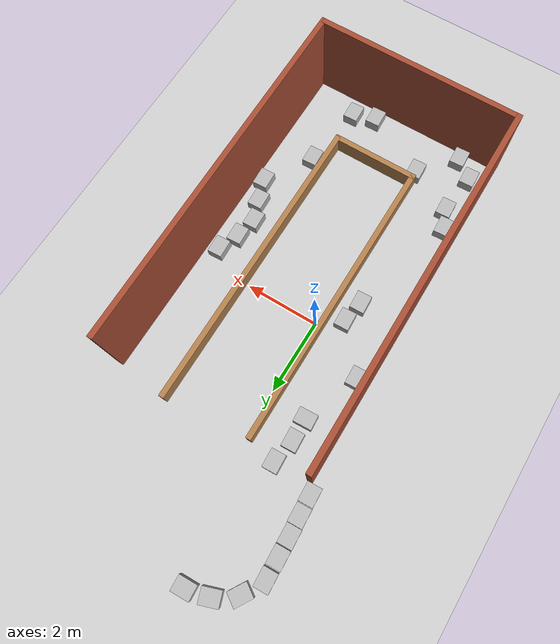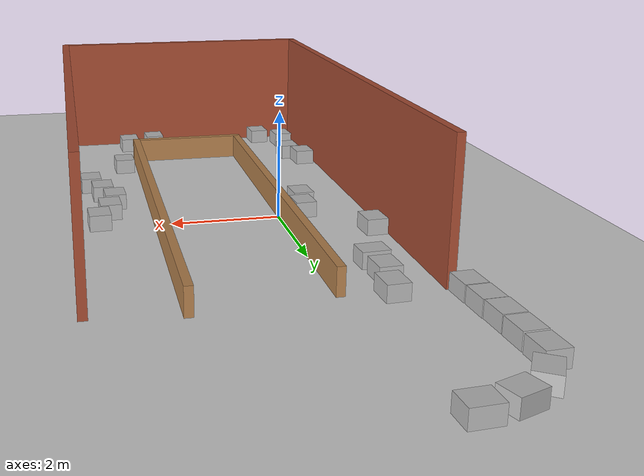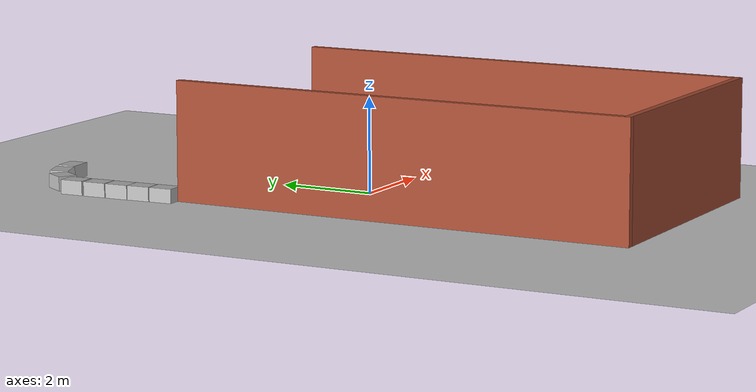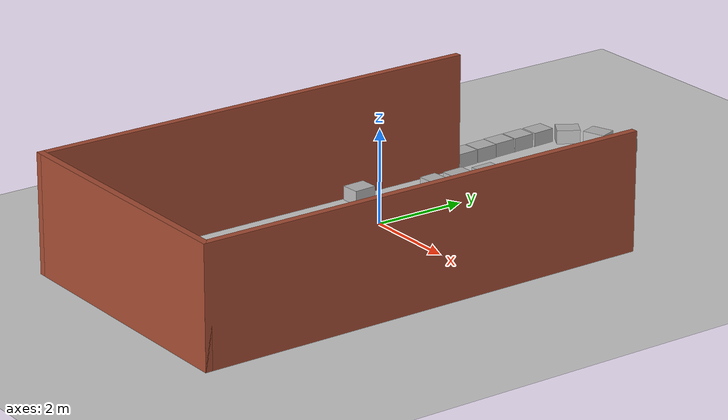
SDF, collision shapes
<?xml version='1.0'?>
<sdf version='1.7'>
  <model name='universe'>
    <model name='cardboard_box'>
      <pose>-2.07196 3.6347 0.010345 0 0 -1.52548</pose>
      <link name='link'>
        <inertial>
          <mass>2</mass>
          <inertia>
            <ixx>0.0416667</ixx>
            <ixy>0</ixy>
            <ixz>0</ixz>
            <iyy>0.0566667</iyy>
            <iyz>0</iyz>
            <izz>0.0683333</izz>
          </inertia>
        </inertial>
        <collision name='collision'>
          <geometry>
            <box>
              <size>0.5 0.4 0.3</size>
            </box>
          </geometry>
          <surface>
            <friction>
              <ode>
                <mu>1</mu>
                <mu2>1</mu2>
              </ode>
            </friction>
            <contact>
              <ode>
                <kp>1e+07</kp>
                <kd>1</kd>
                <min_depth>0.001</min_depth>
                <max_vel>0.1</max_vel>
              </ode>
            </contact>
          </surface>
        </collision>
        <visual name='visual'>
          <pose>0 0 -0.15 0 -0 0</pose>
          <geometry>
            <mesh>
              <uri>model://cardboard_box/meshes/cardboard_box.dae</uri>
              <scale>1.25932 1.00745 0.755591</scale>
            </mesh>
          </geometry>
        </visual>
      </link>
    </model>
    <model name='cardboard_box_clone'>
      <pose>-2.10169 4.15319 0.010345 0 0 -1.52548</pose>
      <link name='link'>
        <inertial>
          <mass>2</mass>
          <inertia>
            <ixx>0.0416667</ixx>
            <ixy>0</ixy>
            <ixz>0</ixz>
            <iyy>0.0566667</iyy>
            <iyz>0</iyz>
            <izz>0.0683333</izz>
          </inertia>
        </inertial>
        <collision name='collision'>
          <geometry>
            <box>
              <size>0.5 0.4 0.3</size>
            </box>
          </geometry>
          <surface>
            <friction>
              <ode>
                <mu>1</mu>
                <mu2>1</mu2>
              </ode>
            </friction>
            <contact>
              <ode>
                <kp>1e+07</kp>
                <kd>1</kd>
                <min_depth>0.001</min_depth>
                <max_vel>0.1</max_vel>
              </ode>
            </contact>
          </surface>
        </collision>
        <visual name='visual'>
          <pose>0 0 -0.15 0 -0 0</pose>
          <geometry>
            <mesh>
              <uri>model://cardboard_box/meshes/cardboard_box.dae</uri>
              <scale>1.25932 1.00745 0.755591</scale>
            </mesh>
          </geometry>
        </visual>
      </link>
    </model>
    <model name='cardboard_box_clone_0'>
      <pose>-2.13751 4.65913 0.010345 0 0 -1.52548</pose>
      <link name='link'>
        <inertial>
          <mass>2</mass>
          <inertia>
            <ixx>0.0416667</ixx>
            <ixy>0</ixy>
            <ixz>0</ixz>
            <iyy>0.0566667</iyy>
            <iyz>0</iyz>
            <izz>0.0683333</izz>
          </inertia>
        </inertial>
        <collision name='collision'>
          <geometry>
            <box>
              <size>0.5 0.4 0.3</size>
            </box>
          </geometry>
          <surface>
            <friction>
              <ode>
                <mu>1</mu>
                <mu2>1</mu2>
              </ode>
            </friction>
            <contact>
              <ode>
                <kp>1e+07</kp>
                <kd>1</kd>
                <min_depth>0.001</min_depth>
                <max_vel>0.1</max_vel>
              </ode>
            </contact>
          </surface>
        </collision>
        <visual name='visual'>
          <pose>0 0 -0.15 0 -0 0</pose>
          <geometry>
            <mesh>
              <uri>model://cardboard_box/meshes/cardboard_box.dae</uri>
              <scale>1.25932 1.00745 0.755591</scale>
            </mesh>
          </geometry>
        </visual>
      </link>
    </model>
    <model name='cardboard_box_clone_1'>
      <pose>-2.15824 5.18313 0.010345 0 0 -1.52548</pose>
      <link name='link'>
        <inertial>
          <mass>2</mass>
          <inertia>
            <ixx>0.0416667</ixx>
            <ixy>0</ixy>
            <ixz>0</ixz>
            <iyy>0.0566667</iyy>
            <iyz>0</iyz>
            <izz>0.0683333</izz>
          </inertia>
        </inertial>
        <collision name='collision'>
          <geometry>
            <box>
              <size>0.5 0.4 0.3</size>
            </box>
          </geometry>
          <surface>
            <friction>
              <ode>
                <mu>1</mu>
                <mu2>1</mu2>
              </ode>
            </friction>
            <contact>
              <ode>
                <kp>1e+07</kp>
                <kd>1</kd>
                <min_depth>0.001</min_depth>
                <max_vel>0.1</max_vel>
              </ode>
            </contact>
          </surface>
        </collision>
        <visual name='visual'>
          <pose>0 0 -0.15 0 -0 0</pose>
          <geometry>
            <mesh>
              <uri>model://cardboard_box/meshes/cardboard_box.dae</uri>
              <scale>1.25932 1.00745 0.755591</scale>
            </mesh>
          </geometry>
        </visual>
      </link>
    </model>
    <model name='cardboard_box_clone_10'>
      <pose>-0.604115 -0.493473 0.010345 0 0 -1.52548</pose>
      <link name='link'>
        <inertial>
          <mass>2</mass>
          <inertia>
            <ixx>0.0416667</ixx>
            <ixy>0</ixy>
            <ixz>0</ixz>
            <iyy>0.0566667</iyy>
            <iyz>0</iyz>
            <izz>0.0683333</izz>
          </inertia>
        </inertial>
        <collision name='collision'>
          <geometry>
            <box>
              <size>0.5 0.4 0.3</size>
            </box>
          </geometry>
          <surface>
            <friction>
              <ode>
                <mu>1</mu>
                <mu2>1</mu2>
              </ode>
            </friction>
            <contact>
              <ode>
                <kp>1e+07</kp>
                <kd>1</kd>
                <min_depth>0.001</min_depth>
                <max_vel>0.1</max_vel>
              </ode>
            </contact>
          </surface>
        </collision>
        <visual name='visual'>
          <pose>0 0 -0.15 0 -0 0</pose>
          <geometry>
            <mesh>
              <uri>model://cardboard_box/meshes/cardboard_box.dae</uri>
              <scale>1.25932 1.00745 0.755591</scale>
            </mesh>
          </geometry>
        </visual>
      </link>
    </model>
    <model name='cardboard_box_clone_11'>
      <pose>-0.717084 -1.08752 0.010345 0 0 -1.52548</pose>
      <link name='link'>
        <inertial>
          <mass>2</mass>
          <inertia>
            <ixx>0.0416667</ixx>
            <ixy>0</ixy>
            <ixz>0</ixz>
            <iyy>0.0566667</iyy>
            <iyz>0</iyz>
            <izz>0.0683333</izz>
          </inertia>
        </inertial>
        <collision name='collision'>
          <geometry>
            <box>
              <size>0.5 0.4 0.3</size>
            </box>
          </geometry>
          <surface>
            <friction>
              <ode>
                <mu>1</mu>
                <mu2>1</mu2>
              </ode>
            </friction>
            <contact>
              <ode>
                <kp>1e+07</kp>
                <kd>1</kd>
                <min_depth>0.001</min_depth>
                <max_vel>0.1</max_vel>
              </ode>
            </contact>
          </surface>
        </collision>
        <visual name='visual'>
          <pose>0 0 -0.15 0 -0 0</pose>
          <geometry>
            <mesh>
              <uri>model://cardboard_box/meshes/cardboard_box.dae</uri>
              <scale>1.25932 1.00745 0.755591</scale>
            </mesh>
          </geometry>
        </visual>
      </link>
    </model>
    <model name='cardboard_box_clone_12'>
      <pose>-1.56668 -4.08105 0.010345 0 0 -1.52548</pose>
      <link name='link'>
        <inertial>
          <mass>2</mass>
          <inertia>
            <ixx>0.0416667</ixx>
            <ixy>0</ixy>
            <ixz>0</ixz>
            <iyy>0.0566667</iyy>
            <iyz>0</iyz>
            <izz>0.0683333</izz>
          </inertia>
        </inertial>
        <collision name='collision'>
          <geometry>
            <box>
              <size>0.5 0.4 0.3</size>
            </box>
          </geometry>
          <surface>
            <friction>
              <ode>
                <mu>1</mu>
                <mu2>1</mu2>
              </ode>
            </friction>
            <contact>
              <ode>
                <kp>1e+07</kp>
                <kd>1</kd>
                <min_depth>0.001</min_depth>
                <max_vel>0.1</max_vel>
              </ode>
            </contact>
          </surface>
        </collision>
        <visual name='visual'>
          <pose>0 0 -0.15 0 -0 0</pose>
          <geometry>
            <mesh>
              <uri>model://cardboard_box/meshes/cardboard_box.dae</uri>
              <scale>1.25932 1.00745 0.755591</scale>
            </mesh>
          </geometry>
        </visual>
      </link>
    </model>
    <model name='cardboard_box_clone_13'>
      <pose>-1.34868 -4.60104 0.010345 0 0 -1.52548</pose>
      <link name='link'>
        <inertial>
          <mass>2</mass>
          <inertia>
            <ixx>0.0416667</ixx>
            <ixy>0</ixy>
            <ixz>0</ixz>
            <iyy>0.0566667</iyy>
            <iyz>0</iyz>
            <izz>0.0683333</izz>
          </inertia>
        </inertial>
        <collision name='collision'>
          <geometry>
            <box>
              <size>0.5 0.4 0.3</size>
            </box>
          </geometry>
          <surface>
            <friction>
              <ode>
                <mu>1</mu>
                <mu2>1</mu2>
              </ode>
            </friction>
            <contact>
              <ode>
                <kp>1e+07</kp>
                <kd>1</kd>
                <min_depth>0.001</min_depth>
                <max_vel>0.1</max_vel>
              </ode>
            </contact>
          </surface>
        </collision>
        <visual name='visual'>
          <pose>0 0 -0.15 0 -0 0</pose>
          <geometry>
            <mesh>
              <uri>model://cardboard_box/meshes/cardboard_box.dae</uri>
              <scale>1.25932 1.00745 0.755591</scale>
            </mesh>
          </geometry>
        </visual>
      </link>
    </model>
    <model name='cardboard_box_clone_14'>
      <pose>-0.101543 -5.22181 0.010345 0 0 -1.52548</pose>
      <link name='link'>
        <inertial>
          <mass>2</mass>
          <inertia>
            <ixx>0.0416667</ixx>
            <ixy>0</ixy>
            <ixz>0</ixz>
            <iyy>0.0566667</iyy>
            <iyz>0</iyz>
            <izz>0.0683333</izz>
          </inertia>
        </inertial>
        <collision name='collision'>
          <geometry>
            <box>
              <size>0.5 0.4 0.3</size>
            </box>
          </geometry>
          <surface>
            <friction>
              <ode>
                <mu>1</mu>
                <mu2>1</mu2>
              </ode>
            </friction>
            <contact>
              <ode>
                <kp>1e+07</kp>
                <kd>1</kd>
                <min_depth>0.001</min_depth>
                <max_vel>0.1</max_vel>
              </ode>
            </contact>
          </surface>
        </collision>
        <visual name='visual'>
          <pose>0 0 -0.15 0 -0 0</pose>
          <geometry>
            <mesh>
              <uri>model://cardboard_box/meshes/cardboard_box.dae</uri>
              <scale>1.25932 1.00745 0.755591</scale>
            </mesh>
          </geometry>
        </visual>
      </link>
    </model>
    <model name='cardboard_box_clone_15'>
      <pose>-1.4684 -5.7531 0.010345 0 0 -1.52548</pose>
      <link name='link'>
        <inertial>
          <mass>2</mass>
          <inertia>
            <ixx>0.0416667</ixx>
            <ixy>0</ixy>
            <ixz>0</ixz>
            <iyy>0.0566667</iyy>
            <iyz>0</iyz>
            <izz>0.0683333</izz>
          </inertia>
        </inertial>
        <collision name='collision'>
          <geometry>
            <box>
              <size>0.5 0.4 0.3</size>
            </box>
          </geometry>
          <surface>
            <friction>
              <ode>
                <mu>1</mu>
                <mu2>1</mu2>
              </ode>
            </friction>
            <contact>
              <ode>
                <kp>1e+07</kp>
                <kd>1</kd>
                <min_depth>0.001</min_depth>
                <max_vel>0.1</max_vel>
              </ode>
            </contact>
          </surface>
        </collision>
        <visual name='visual'>
          <pose>0 0 -0.15 0 -0 0</pose>
          <geometry>
            <mesh>
              <uri>model://cardboard_box/meshes/cardboard_box.dae</uri>
              <scale>1.25932 1.00745 0.755591</scale>
            </mesh>
          </geometry>
        </visual>
      </link>
    </model>
    <model name='cardboard_box_clone_16'>
      <pose>-0.957974 -6.17546 0.010345 0 0 -1.52548</pose>
      <link name='link'>
        <inertial>
          <mass>2</mass>
          <inertia>
            <ixx>0.0416667</ixx>
            <ixy>0</ixy>
            <ixz>0</ixz>
            <iyy>0.0566667</iyy>
            <iyz>0</iyz>
            <izz>0.0683333</izz>
          </inertia>
        </inertial>
        <collision name='collision'>
          <geometry>
            <box>
              <size>0.5 0.4 0.3</size>
            </box>
          </geometry>
          <surface>
            <friction>
              <ode>
                <mu>1</mu>
                <mu2>1</mu2>
              </ode>
            </friction>
            <contact>
              <ode>
                <kp>1e+07</kp>
                <kd>1</kd>
                <min_depth>0.001</min_depth>
                <max_vel>0.1</max_vel>
              </ode>
            </contact>
          </surface>
        </collision>
        <visual name='visual'>
          <pose>0 0 -0.15 0 -0 0</pose>
          <geometry>
            <mesh>
              <uri>model://cardboard_box/meshes/cardboard_box.dae</uri>
              <scale>1.25932 1.00745 0.755591</scale>
            </mesh>
          </geometry>
        </visual>
      </link>
    </model>
    <model name='cardboard_box_clone_17'>
      <pose>1.67455 -6.10214 0.010345 0 0 -1.52548</pose>
      <link name='link'>
        <inertial>
          <mass>2</mass>
          <inertia>
            <ixx>0.0416667</ixx>
            <ixy>0</ixy>
            <ixz>0</ixz>
            <iyy>0.0566667</iyy>
            <iyz>0</iyz>
            <izz>0.0683333</izz>
          </inertia>
        </inertial>
        <collision name='collision'>
          <geometry>
            <box>
              <size>0.5 0.4 0.3</size>
            </box>
          </geometry>
          <surface>
            <friction>
              <ode>
                <mu>1</mu>
                <mu2>1</mu2>
              </ode>
            </friction>
            <contact>
              <ode>
                <kp>1e+07</kp>
                <kd>1</kd>
                <min_depth>0.001</min_depth>
                <max_vel>0.1</max_vel>
              </ode>
            </contact>
          </surface>
        </collision>
        <visual name='visual'>
          <pose>0 0 -0.15 0 -0 0</pose>
          <geometry>
            <mesh>
              <uri>model://cardboard_box/meshes/cardboard_box.dae</uri>
              <scale>1.25932 1.00745 0.755591</scale>
            </mesh>
          </geometry>
        </visual>
      </link>
    </model>
    <model name='cardboard_box_clone_18'>
      <pose>2.28951 -5.92063 0.010345 0 0 -1.52548</pose>
      <link name='link'>
        <inertial>
          <mass>2</mass>
          <inertia>
            <ixx>0.0416667</ixx>
            <ixy>0</ixy>
            <ixz>0</ixz>
            <iyy>0.0566667</iyy>
            <iyz>0</iyz>
            <izz>0.0683333</izz>
          </inertia>
        </inertial>
        <collision name='collision'>
          <geometry>
            <box>
              <size>0.5 0.4 0.3</size>
            </box>
          </geometry>
          <surface>
            <friction>
              <ode>
                <mu>1</mu>
                <mu2>1</mu2>
              </ode>
            </friction>
            <contact>
              <ode>
                <kp>1e+07</kp>
                <kd>1</kd>
                <min_depth>0.001</min_depth>
                <max_vel>0.1</max_vel>
              </ode>
            </contact>
          </surface>
        </collision>
        <visual name='visual'>
          <pose>0 0 -0.15 0 -0 0</pose>
          <geometry>
            <mesh>
              <uri>model://cardboard_box/meshes/cardboard_box.dae</uri>
              <scale>1.25932 1.00745 0.755591</scale>
            </mesh>
          </geometry>
        </visual>
      </link>
    </model>
    <model name='cardboard_box_clone_19'>
      <pose>2.5479 -4.10393 0.010345 0 0 -1.52548</pose>
      <link name='link'>
        <inertial>
          <mass>2</mass>
          <inertia>
            <ixx>0.0416667</ixx>
            <ixy>0</ixy>
            <ixz>0</ixz>
            <iyy>0.0566667</iyy>
            <iyz>0</iyz>
            <izz>0.0683333</izz>
          </inertia>
        </inertial>
        <collision name='collision'>
          <geometry>
            <box>
              <size>0.5 0.4 0.3</size>
            </box>
          </geometry>
          <surface>
            <friction>
              <ode>
                <mu>1</mu>
                <mu2>1</mu2>
              </ode>
            </friction>
            <contact>
              <ode>
                <kp>1e+07</kp>
                <kd>1</kd>
                <min_depth>0.001</min_depth>
                <max_vel>0.1</max_vel>
              </ode>
            </contact>
          </surface>
        </collision>
        <visual name='visual'>
          <pose>0 0 -0.15 0 -0 0</pose>
          <geometry>
            <mesh>
              <uri>model://cardboard_box/meshes/cardboard_box.dae</uri>
              <scale>1.25932 1.00745 0.755591</scale>
            </mesh>
          </geometry>
        </visual>
      </link>
    </model>
    <model name='cardboard_box_clone_2'>
      <pose>-2.17427 5.72729 0.010345 0 0 -1.52548</pose>
      <link name='link'>
        <inertial>
          <mass>2</mass>
          <inertia>
            <ixx>0.0416667</ixx>
            <ixy>0</ixy>
            <ixz>0</ixz>
            <iyy>0.0566667</iyy>
            <iyz>0</iyz>
            <izz>0.0683333</izz>
          </inertia>
        </inertial>
        <collision name='collision'>
          <geometry>
            <box>
              <size>0.5 0.4 0.3</size>
            </box>
          </geometry>
          <surface>
            <friction>
              <ode>
                <mu>1</mu>
                <mu2>1</mu2>
              </ode>
            </friction>
            <contact>
              <ode>
                <kp>1e+07</kp>
                <kd>1</kd>
                <min_depth>0.001</min_depth>
                <max_vel>0.1</max_vel>
              </ode>
            </contact>
          </surface>
        </collision>
        <visual name='visual'>
          <pose>0 0 -0.15 0 -0 0</pose>
          <geometry>
            <mesh>
              <uri>model://cardboard_box/meshes/cardboard_box.dae</uri>
              <scale>1.25932 1.00745 0.755591</scale>
            </mesh>
          </geometry>
        </visual>
      </link>
    </model>
    <model name='cardboard_box_clone_20'>
      <pose>3.33931 -2.81081 0.010345 0 0 -1.52548</pose>
      <link name='link'>
        <inertial>
          <mass>2</mass>
          <inertia>
            <ixx>0.0416667</ixx>
            <ixy>0</ixy>
            <ixz>0</ixz>
            <iyy>0.0566667</iyy>
            <iyz>0</iyz>
            <izz>0.0683333</izz>
          </inertia>
        </inertial>
        <collision name='collision'>
          <geometry>
            <box>
              <size>0.5 0.4 0.3</size>
            </box>
          </geometry>
          <surface>
            <friction>
              <ode>
                <mu>1</mu>
                <mu2>1</mu2>
              </ode>
            </friction>
            <contact>
              <ode>
                <kp>1e+07</kp>
                <kd>1</kd>
                <min_depth>0.001</min_depth>
                <max_vel>0.1</max_vel>
              </ode>
            </contact>
          </surface>
        </collision>
        <visual name='visual'>
          <pose>0 0 -0.15 0 -0 0</pose>
          <geometry>
            <mesh>
              <uri>model://cardboard_box/meshes/cardboard_box.dae</uri>
              <scale>1.25932 1.00745 0.755591</scale>
            </mesh>
          </geometry>
        </visual>
      </link>
    </model>
    <model name='cardboard_box_clone_21'>
      <pose>3.12737 -2.21568 0.010345 0 0 -1.52548</pose>
      <link name='link'>
        <inertial>
          <mass>2</mass>
          <inertia>
            <ixx>0.0416667</ixx>
            <ixy>0</ixy>
            <ixz>0</ixz>
            <iyy>0.0566667</iyy>
            <iyz>0</iyz>
            <izz>0.0683333</izz>
          </inertia>
        </inertial>
        <collision name='collision'>
          <geometry>
            <box>
              <size>0.5 0.4 0.3</size>
            </box>
          </geometry>
          <surface>
            <friction>
              <ode>
                <mu>1</mu>
                <mu2>1</mu2>
              </ode>
            </friction>
            <contact>
              <ode>
                <kp>1e+07</kp>
                <kd>1</kd>
                <min_depth>0.001</min_depth>
                <max_vel>0.1</max_vel>
              </ode>
            </contact>
          </surface>
        </collision>
        <visual name='visual'>
          <pose>0 0 -0.15 0 -0 0</pose>
          <geometry>
            <mesh>
              <uri>model://cardboard_box/meshes/cardboard_box.dae</uri>
              <scale>1.25932 1.00745 0.755591</scale>
            </mesh>
          </geometry>
        </visual>
      </link>
    </model>
    <model name='cardboard_box_clone_22'>
      <pose>2.9166 -1.64963 0.010345 0 0 -1.52548</pose>
      <link name='link'>
        <inertial>
          <mass>2</mass>
          <inertia>
            <ixx>0.0416667</ixx>
            <ixy>0</ixy>
            <ixz>0</ixz>
            <iyy>0.0566667</iyy>
            <iyz>0</iyz>
            <izz>0.0683333</izz>
          </inertia>
        </inertial>
        <collision name='collision'>
          <geometry>
            <box>
              <size>0.5 0.4 0.3</size>
            </box>
          </geometry>
          <surface>
            <friction>
              <ode>
                <mu>1</mu>
                <mu2>1</mu2>
              </ode>
            </friction>
            <contact>
              <ode>
                <kp>1e+07</kp>
                <kd>1</kd>
                <min_depth>0.001</min_depth>
                <max_vel>0.1</max_vel>
              </ode>
            </contact>
          </surface>
        </collision>
        <visual name='visual'>
          <pose>0 0 -0.15 0 -0 0</pose>
          <geometry>
            <mesh>
              <uri>model://cardboard_box/meshes/cardboard_box.dae</uri>
              <scale>1.25932 1.00745 0.755591</scale>
            </mesh>
          </geometry>
        </visual>
      </link>
    </model>
    <model name='cardboard_box_clone_23'>
      <pose>3.04318 -1.05828 0.010345 0 0 -1.52548</pose>
      <link name='link'>
        <inertial>
          <mass>2</mass>
          <inertia>
            <ixx>0.0416667</ixx>
            <ixy>0</ixy>
            <ixz>0</ixz>
            <iyy>0.0566667</iyy>
            <iyz>0</iyz>
            <izz>0.0683333</izz>
          </inertia>
        </inertial>
        <collision name='collision'>
          <geometry>
            <box>
              <size>0.5 0.4 0.3</size>
            </box>
          </geometry>
          <surface>
            <friction>
              <ode>
                <mu>1</mu>
                <mu2>1</mu2>
              </ode>
            </friction>
            <contact>
              <ode>
                <kp>1e+07</kp>
                <kd>1</kd>
                <min_depth>0.001</min_depth>
                <max_vel>0.1</max_vel>
              </ode>
            </contact>
          </surface>
        </collision>
        <visual name='visual'>
          <pose>0 0 -0.15 0 -0 0</pose>
          <geometry>
            <mesh>
              <uri>model://cardboard_box/meshes/cardboard_box.dae</uri>
              <scale>1.25932 1.00745 0.755591</scale>
            </mesh>
          </geometry>
        </visual>
      </link>
    </model>
    <model name='cardboard_box_clone_24'>
      <pose>3.2687 -0.499463 0.010345 0 0 -1.52548</pose>
      <link name='link'>
        <inertial>
          <mass>2</mass>
          <inertia>
            <ixx>0.0416667</ixx>
            <ixy>0</ixy>
            <ixz>0</ixz>
            <iyy>0.0566667</iyy>
            <iyz>0</iyz>
            <izz>0.0683333</izz>
          </inertia>
        </inertial>
        <collision name='collision'>
          <geometry>
            <box>
              <size>0.5 0.4 0.3</size>
            </box>
          </geometry>
          <surface>
            <friction>
              <ode>
                <mu>1</mu>
                <mu2>1</mu2>
              </ode>
            </friction>
            <contact>
              <ode>
                <kp>1e+07</kp>
                <kd>1</kd>
                <min_depth>0.001</min_depth>
                <max_vel>0.1</max_vel>
              </ode>
            </contact>
          </surface>
        </collision>
        <visual name='visual'>
          <pose>0 0 -0.15 0 -0 0</pose>
          <geometry>
            <mesh>
              <uri>model://cardboard_box/meshes/cardboard_box.dae</uri>
              <scale>1.25932 1.00745 0.755591</scale>
            </mesh>
          </geometry>
        </visual>
      </link>
    </model>
    <model name='cardboard_box_clone_3'>
      <pose>-1.85164 6.28198 0.010345 0 0 -2.13219</pose>
      <link name='link'>
        <inertial>
          <mass>2</mass>
          <inertia>
            <ixx>0.0416667</ixx>
            <ixy>0</ixy>
            <ixz>0</ixz>
            <iyy>0.0566667</iyy>
            <iyz>0</iyz>
            <izz>0.0683333</izz>
          </inertia>
        </inertial>
        <collision name='collision'>
          <geometry>
            <box>
              <size>0.5 0.4 0.3</size>
            </box>
          </geometry>
          <surface>
            <friction>
              <ode>
                <mu>1</mu>
                <mu2>1</mu2>
              </ode>
            </friction>
            <contact>
              <ode>
                <kp>1e+07</kp>
                <kd>1</kd>
                <min_depth>0.001</min_depth>
                <max_vel>0.1</max_vel>
              </ode>
            </contact>
          </surface>
        </collision>
        <visual name='visual'>
          <pose>0 0 -0.15 0 -0 0</pose>
          <geometry>
            <mesh>
              <uri>model://cardboard_box/meshes/cardboard_box.dae</uri>
              <scale>1.25932 1.00745 0.755591</scale>
            </mesh>
          </geometry>
        </visual>
      </link>
    </model>
    <model name='cardboard_box_clone_4'>
      <pose>-1.29977 6.67017 0.010345 0 0 -2.80544</pose>
      <link name='link'>
        <inertial>
          <mass>2</mass>
          <inertia>
            <ixx>0.0416667</ixx>
            <ixy>0</ixy>
            <ixz>0</ixz>
            <iyy>0.0566667</iyy>
            <iyz>0</iyz>
            <izz>0.0683333</izz>
          </inertia>
        </inertial>
        <collision name='collision'>
          <geometry>
            <box>
              <size>0.5 0.4 0.3</size>
            </box>
          </geometry>
          <surface>
            <friction>
              <ode>
                <mu>1</mu>
                <mu2>1</mu2>
              </ode>
            </friction>
            <contact>
              <ode>
                <kp>1e+07</kp>
                <kd>1</kd>
                <min_depth>0.001</min_depth>
                <max_vel>0.1</max_vel>
              </ode>
            </contact>
          </surface>
        </collision>
        <visual name='visual'>
          <pose>0 0 -0.15 0 -0 0</pose>
          <geometry>
            <mesh>
              <uri>model://cardboard_box/meshes/cardboard_box.dae</uri>
              <scale>1.25932 1.00745 0.755591</scale>
            </mesh>
          </geometry>
        </visual>
      </link>
    </model>
    <model name='cardboard_box_clone_5'>
      <pose>-0.686239 6.81297 0.010345 0 -0 0.048132</pose>
      <link name='link'>
        <inertial>
          <mass>2</mass>
          <inertia>
            <ixx>0.0416667</ixx>
            <ixy>0</ixy>
            <ixz>0</ixz>
            <iyy>0.0566667</iyy>
            <iyz>0</iyz>
            <izz>0.0683333</izz>
          </inertia>
        </inertial>
        <collision name='collision'>
          <geometry>
            <box>
              <size>0.5 0.4 0.3</size>
            </box>
          </geometry>
          <surface>
            <friction>
              <ode>
                <mu>1</mu>
                <mu2>1</mu2>
              </ode>
            </friction>
            <contact>
              <ode>
                <kp>1e+07</kp>
                <kd>1</kd>
                <min_depth>0.001</min_depth>
                <max_vel>0.1</max_vel>
              </ode>
            </contact>
          </surface>
        </collision>
        <visual name='visual'>
          <pose>0 0 -0.15 0 -0 0</pose>
          <geometry>
            <mesh>
              <uri>model://cardboard_box/meshes/cardboard_box.dae</uri>
              <scale>1.25932 1.00745 0.755591</scale>
            </mesh>
          </geometry>
        </visual>
      </link>
    </model>
    <model name='cardboard_box_clone_6'>
      <pose>-0.936316 3.42565 0.010345 0 0 -1.52548</pose>
      <link name='link'>
        <inertial>
          <mass>2</mass>
          <inertia>
            <ixx>0.0416667</ixx>
            <ixy>0</ixy>
            <ixz>0</ixz>
            <iyy>0.0566667</iyy>
            <iyz>0</iyz>
            <izz>0.0683333</izz>
          </inertia>
        </inertial>
        <collision name='collision'>
          <geometry>
            <box>
              <size>0.5 0.4 0.3</size>
            </box>
          </geometry>
          <surface>
            <friction>
              <ode>
                <mu>1</mu>
                <mu2>1</mu2>
              </ode>
            </friction>
            <contact>
              <ode>
                <kp>1e+07</kp>
                <kd>1</kd>
                <min_depth>0.001</min_depth>
                <max_vel>0.1</max_vel>
              </ode>
            </contact>
          </surface>
        </collision>
        <visual name='visual'>
          <pose>0 0 -0.15 0 -0 0</pose>
          <geometry>
            <mesh>
              <uri>model://cardboard_box/meshes/cardboard_box.dae</uri>
              <scale>1.25932 1.00745 0.755591</scale>
            </mesh>
          </geometry>
        </visual>
      </link>
    </model>
    <model name='cardboard_box_clone_7'>
      <pose>-1.05827 2.77423 0.010345 0 0 -1.52548</pose>
      <link name='link'>
        <inertial>
          <mass>2</mass>
          <inertia>
            <ixx>0.0416667</ixx>
            <ixy>0</ixy>
            <ixz>0</ixz>
            <iyy>0.0566667</iyy>
            <iyz>0</iyz>
            <izz>0.0683333</izz>
          </inertia>
        </inertial>
        <collision name='collision'>
          <geometry>
            <box>
              <size>0.5 0.4 0.3</size>
            </box>
          </geometry>
          <surface>
            <friction>
              <ode>
                <mu>1</mu>
                <mu2>1</mu2>
              </ode>
            </friction>
            <contact>
              <ode>
                <kp>1e+07</kp>
                <kd>1</kd>
                <min_depth>0.001</min_depth>
                <max_vel>0.1</max_vel>
              </ode>
            </contact>
          </surface>
        </collision>
        <visual name='visual'>
          <pose>0 0 -0.15 0 -0 0</pose>
          <geometry>
            <mesh>
              <uri>model://cardboard_box/meshes/cardboard_box.dae</uri>
              <scale>1.25932 1.00745 0.755591</scale>
            </mesh>
          </geometry>
        </visual>
      </link>
    </model>
    <model name='cardboard_box_clone_8'>
      <pose>-1.05361 2.17648 0.010345 0 -0 0.056912</pose>
      <link name='link'>
        <inertial>
          <mass>2</mass>
          <inertia>
            <ixx>0.0416667</ixx>
            <ixy>0</ixy>
            <ixz>0</ixz>
            <iyy>0.0566667</iyy>
            <iyz>0</iyz>
            <izz>0.0683333</izz>
          </inertia>
        </inertial>
        <collision name='collision'>
          <geometry>
            <box>
              <size>0.5 0.4 0.3</size>
            </box>
          </geometry>
          <surface>
            <friction>
              <ode>
                <mu>1</mu>
                <mu2>1</mu2>
              </ode>
            </friction>
            <contact>
              <ode>
                <kp>1e+07</kp>
                <kd>1</kd>
                <min_depth>0.001</min_depth>
                <max_vel>0.1</max_vel>
              </ode>
            </contact>
          </surface>
        </collision>
        <visual name='visual'>
          <pose>0 0 -0.15 0 -0 0</pose>
          <geometry>
            <mesh>
              <uri>model://cardboard_box/meshes/cardboard_box.dae</uri>
              <scale>1.25932 1.00745 0.755591</scale>
            </mesh>
          </geometry>
        </visual>
      </link>
    </model>
    <model name='cardboard_box_clone_9'>
      <pose>-1.60676 0.66799 0.010345 0 0 -1.52548</pose>
      <link name='link'>
        <inertial>
          <mass>2</mass>
          <inertia>
            <ixx>0.0416667</ixx>
            <ixy>0</ixy>
            <ixz>0</ixz>
            <iyy>0.0566667</iyy>
            <iyz>0</iyz>
            <izz>0.0683333</izz>
          </inertia>
        </inertial>
        <collision name='collision'>
          <geometry>
            <box>
              <size>0.5 0.4 0.3</size>
            </box>
          </geometry>
          <surface>
            <friction>
              <ode>
                <mu>1</mu>
                <mu2>1</mu2>
              </ode>
            </friction>
            <contact>
              <ode>
                <kp>1e+07</kp>
                <kd>1</kd>
                <min_depth>0.001</min_depth>
                <max_vel>0.1</max_vel>
              </ode>
            </contact>
          </surface>
        </collision>
        <visual name='visual'>
          <pose>0 0 -0.15 0 -0 0</pose>
          <geometry>
            <mesh>
              <uri>model://cardboard_box/meshes/cardboard_box.dae</uri>
              <scale>1.25932 1.00745 0.755591</scale>
            </mesh>
          </geometry>
        </visual>
      </link>
    </model>
    <model name='single_line'>
      <static>1</static>
      <link name='link'>
        <collision name='collision'>
          <geometry>
            <plane>
              <normal>0 0 1</normal>
              <size>500 500</size>
            </plane>
          </geometry>
          <surface>
            <friction>
              <ode>
                <mu>0.5</mu>
                <mu2>0.5</mu2>
              </ode>
            </friction>
          </surface>
        </collision>
        <visual name='visual_0'>
          <pose>0 0 0 0 -0 0</pose>
          <cast_shadows>0</cast_shadows>
          <geometry>
            <plane>
              <normal>0 0 1</normal>
              <size>20 20</size>
            </plane>
          </geometry>
          <material>
            <script>
              <uri>model://capstone/worlds/models/single_line/materials/scripts</uri>
              <uri>model://capstone/worlds/models/single_line/materials/textures</uri>
              <name>path/kobuki</name>
            </script>
          </material>
        </visual>
      </link>
      <pose>2.79856 1.12607 -0.139655 0 -0 0</pose>
    </model>
    <model name='walls'>
      <pose>0.895062 -1.51897 -0.139655 0 0 -1.57079</pose>
      <link name='Wall_0'>
        <collision name='Wall_0_Collision'>
          <geometry>
            <box>
              <size>10 0.15 2.5</size>
            </box>
          </geometry>
          <pose>0 0 1.25 0 -0 0</pose>
        </collision>
        <visual name='Wall_0_Visual'>
          <pose>0 0 1.25 0 -0 0</pose>
          <geometry>
            <box>
              <size>10 0.15 2.5</size>
            </box>
          </geometry>
          <material>
            <script>
              <uri>file://media/materials/scripts/gazebo.material</uri>
              <name>Gazebo/Bricks</name>
            </script>
            <ambient>1 1 1 1</ambient>
          </material>
          <meta>
            <layer>0</layer>
          </meta>
        </visual>
        <pose>0.095089 2.8 0 0 -0 0</pose>
      </link>
      <link name='Wall_2'>
        <collision name='Wall_2_Collision'>
          <geometry>
            <box>
              <size>5.75 0.15 2.5</size>
            </box>
          </geometry>
          <pose>0 0 1.25 0 -0 0</pose>
        </collision>
        <visual name='Wall_2_Visual'>
          <pose>0 0 1.25 0 -0 0</pose>
          <geometry>
            <box>
              <size>5.75 0.15 2.5</size>
            </box>
          </geometry>
          <material>
            <script>
              <uri>file://media/materials/scripts/gazebo.material</uri>
              <name>Gazebo/Bricks</name>
            </script>
            <ambient>1 1 1 1</ambient>
          </material>
          <meta>
            <layer>0</layer>
          </meta>
        </visual>
        <pose>5.02009 0 0 0 -0 -1.5708</pose>
      </link>
      <link name='Wall_3'>
        <collision name='Wall_3_Collision'>
          <geometry>
            <box>
              <size>10 0.15 2.5</size>
            </box>
          </geometry>
          <pose>0 0 1.25 0 -0 0</pose>
        </collision>
        <visual name='Wall_3_Visual'>
          <pose>0 0 1.25 0 -0 0</pose>
          <geometry>
            <box>
              <size>10 0.15 2.5</size>
            </box>
          </geometry>
          <material>
            <script>
              <uri>file://media/materials/scripts/gazebo.material</uri>
              <name>Gazebo/Bricks</name>
            </script>
            <ambient>1 1 1 1</ambient>
          </material>
          <meta>
            <layer>0</layer>
          </meta>
        </visual>
        <pose>0.095089 -2.8 0 0 -0 3.14159</pose>
      </link>
      <link name='Wall_5'>
        <collision name='Wall_5_Collision'>
          <geometry>
            <box>
              <size>8.5 0.15 0.5</size>
            </box>
          </geometry>
          <pose>0 0 0.25 0 -0 0</pose>
        </collision>
        <visual name='Wall_5_Visual'>
          <pose>0 0 0.25 0 -0 0</pose>
          <geometry>
            <box>
              <size>8.5 0.15 0.5</size>
            </box>
          </geometry>
          <material>
            <script>
              <uri>file://media/materials/scripts/gazebo.material</uri>
              <name>Gazebo/Wood</name>
            </script>
            <ambient>1 1 1 1</ambient>
          </material>
          <meta>
            <layer>0</layer>
          </meta>
        </visual>
        <pose>-0.84509 1.30145 0 0 -0 0</pose>
      </link>
      <link name='Wall_7'>
        <collision name='Wall_7_Collision'>
          <geometry>
            <box>
              <size>2.5 0.15 0.5</size>
            </box>
          </geometry>
          <pose>0 0 0.25 0 -0 0</pose>
        </collision>
        <visual name='Wall_7_Visual'>
          <pose>0 0 0.25 0 -0 0</pose>
          <geometry>
            <box>
              <size>2.5 0.15 0.5</size>
            </box>
          </geometry>
          <material>
            <script>
              <uri>file://media/materials/scripts/gazebo.material</uri>
              <name>Gazebo/Wood</name>
            </script>
            <ambient>1 1 1 1</ambient>
          </material>
          <meta>
            <layer>0</layer>
          </meta>
        </visual>
        <pose>3.32991 0.126453 0 0 -0 -1.5708</pose>
      </link>
      <link name='Wall_8'>
        <collision name='Wall_8_Collision'>
          <geometry>
            <box>
              <size>8.25 0.15 0.5</size>
            </box>
          </geometry>
          <pose>0 0 0.25 0 -0 0</pose>
        </collision>
        <visual name='Wall_8_Visual'>
          <pose>0 0 0.25 0 -0 0</pose>
          <geometry>
            <box>
              <size>8.25 0.15 0.5</size>
            </box>
          </geometry>
          <material>
            <script>
              <uri>file://media/materials/scripts/gazebo.material</uri>
              <name>Gazebo/Wood</name>
            </script>
            <ambient>1 1 1 1</ambient>
          </material>
          <meta>
            <layer>0</layer>
          </meta>
        </visual>
        <pose>-0.72009 -1.04855 0 0 -0 3.14159</pose>
      </link>
      <static>1</static>
    </model>
    <static>0</static>
    <allow_auto_disable>1</allow_auto_disable>
  </model>
</sdf>
